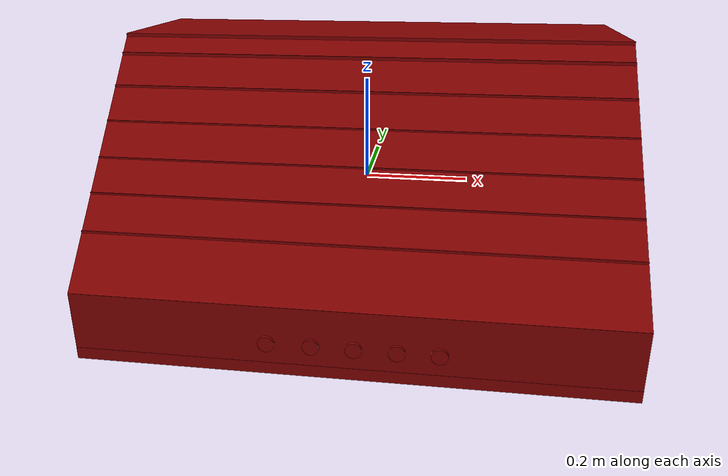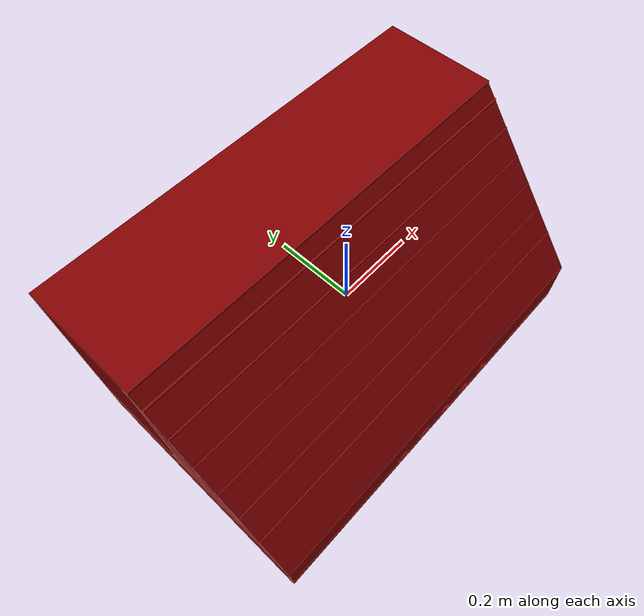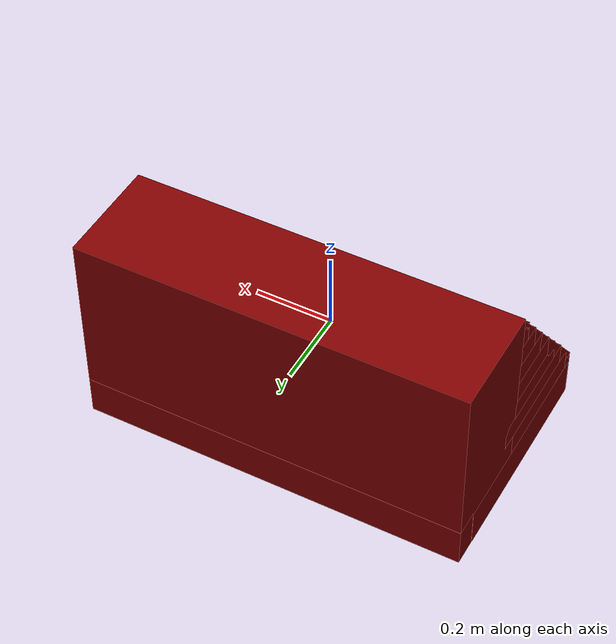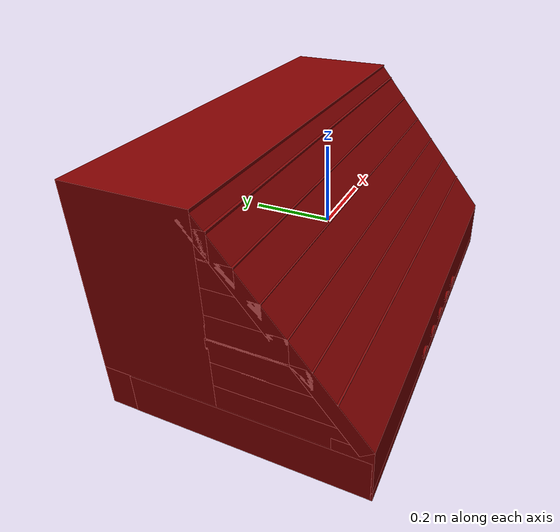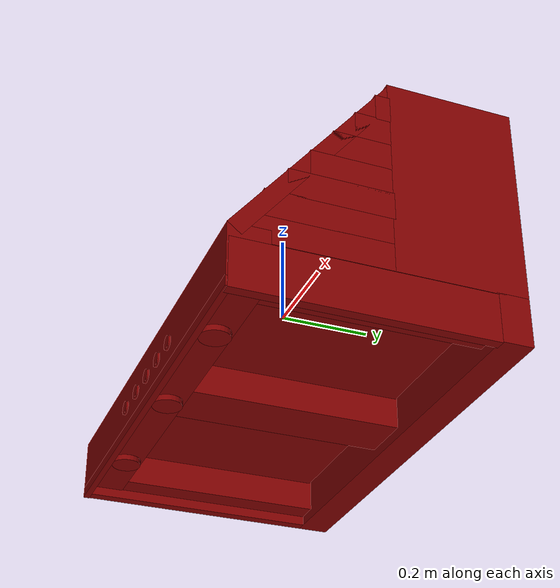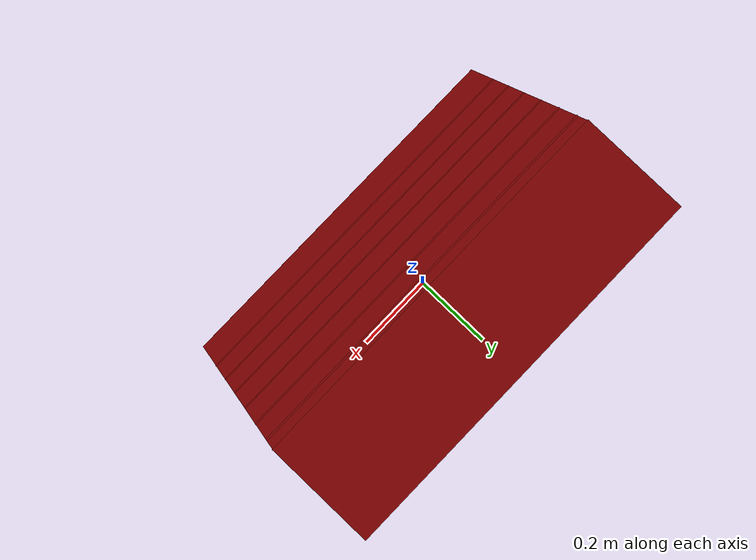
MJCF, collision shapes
<?xml version='1.0' encoding='UTF-8'?>
<mujoco model="model">
  <compiler angle="radian"/>
  <asset>
    <mesh file="visuals/Body001.obj" name="Body001_vis"/>
    <mesh file="visuals/Button001.obj" name="Button001_vis"/>
    <mesh file="visuals/Button002.obj" name="Button002_vis"/>
    <mesh file="visuals/Button003.obj" name="Button003_vis"/>
    <mesh file="visuals/Button004.obj" name="Button004_vis"/>
    <mesh file="visuals/Button005.obj" name="Button005_vis"/>
    <texture file="visuals/T_BC001.png" name="Body001_material" type="2d"/>
    <material name="Body001_material" rgba="1 1 1 1.0" texture="Body001_material" shininess="-1615.1451416015625" specular="0.7"/>
    <texture file="visuals/T_BC001.png" name="Button001_material" type="2d"/>
    <material name="Button001_material" rgba="1 1 1 1.0" texture="Button001_material" shininess="-1615.1451416015625" specular="0.3103448502657381"/>
    <texture file="visuals/T_BC001.png" name="Button002_material" type="2d"/>
    <material name="Button002_material" rgba="1 1 1 1.0" texture="Button002_material" shininess="-1615.1451416015625" specular="0.3103448502657381"/>
    <texture file="visuals/T_BC001.png" name="Button003_material" type="2d"/>
    <material name="Button003_material" rgba="1 1 1 1.0" texture="Button003_material" shininess="-1615.1451416015625" specular="0.3103448502657381"/>
    <texture file="visuals/T_BC001.png" name="Button004_material" type="2d"/>
    <material name="Button004_material" rgba="1 1 1 1.0" texture="Button004_material" shininess="-1615.1451416015625" specular="0.3103448502657381"/>
    <texture file="visuals/T_BC001.png" name="Button005_material" type="2d"/>
    <material name="Button005_material" rgba="1 1 1 1.0" texture="Button005_material" shininess="-1615.1451416015625" specular="0.3103448502657381"/>
  </asset>
  <default>
    <default class="visual">
      <geom conaffinity="0" contype="0" group="1" type="mesh"/>
    </default>
    <default class="collision">
      <geom group="0" rgba="0.5 0 0 0.5"/>
    </default>
    <default class="spawn">
      <geom group="0" rgba="1 1 1 0.5" contype="0" conaffinity="0"/>
      <site group="0" rgba="1 1 1 0.5"/>
    </default>
    <default class="region">
      <geom group="1" conaffinity="0" contype="0" rgba="0 1 0 0"/>
    </default>
  </default>
  <worldbody>
    <body>
      <body name="object">
        <geom mesh="Body001_vis" type="mesh" solimp="0.998 0.998 0.001" solref="0.001 1" density="100" friction="0.95 0.3 0.1" class="visual" material="Body001_material"/>
        <geom class="collision" type="box" pos="-0.000000 0.169169 0.052685" size="0.5031148195266724 0.14136171340942383 0.22405751049518585" quat="1.0 0.0 0.0 0.0"/>
        <geom class="collision" type="box" pos="-0.000000 -0.122727 0.054321" size="0.5031148195266724 0.018117135390639305 0.266616553068161" quat="0.9430525302886963 -0.3326438069343567 -7.400192679193351e-17 -4.955875248644164e-20"/>
        <geom class="collision" type="box" pos="-0.000000 -0.120024 -0.141008" size="0.5031148195266724 0.15663526952266693 0.030364563688635826" quat="1.0 0.0 0.0 0.0"/>
        <geom class="collision" type="box" pos="-0.000000 -0.077251 -0.081126" size="0.5031148195266724 0.15663526952266693 0.030364563688635826" quat="1.0 0.0 0.0 0.0"/>
        <geom class="collision" type="box" pos="-0.000000 -0.076622 -0.022873" size="0.5031148195266724 0.10973050445318222 0.030364563688635826" quat="1.0 0.0 0.0 0.0"/>
        <geom class="collision" type="box" pos="0.000000 -0.055490 0.033342" size="0.5031148195266724 0.08540207892656326 0.030364563688635826" quat="1.0 0.0 0.0 0.0"/>
        <geom class="collision" type="box" pos="0.000000 -0.030999 0.093468" size="0.5031148195266724 0.06149798259139061 0.030364563688635826" quat="1.0 0.0 0.0 0.0"/>
        <geom class="collision" type="box" pos="0.000000 -0.006979 0.153724" size="0.5031148195266724 0.03799305856227875 0.030364563688635826" quat="1.0 0.0 0.0 0.0"/>
        <geom class="collision" type="box" pos="0.000000 0.016753 0.211716" size="0.5031148195266724 0.016180111095309258 0.030364563688635826" quat="1.0 0.0 0.0 0.0"/>
        <geom class="collision" type="box" pos="-0.000000 0.275568 -0.222590" size="0.5031148195266724 0.034963008016347885 0.05370902642607689" quat="1.0 0.0 0.0 0.0"/>
        <geom class="collision" type="box" pos="-0.000000 -0.028239 -0.213599" size="0.059800684452056885 0.2723213732242584 0.040973205119371414" quat="1.0 0.0 0.0 0.0"/>
        <geom class="collision" type="box" pos="-0.491141 -0.028239 -0.224362" size="0.012497935444116592 0.2723214328289032 0.05173563212156296" quat="1.0 0.0 0.0 0.0"/>
        <geom class="collision" type="box" pos="0.492404 -0.028239 -0.225589" size="0.011018079705536366 0.2723214626312256 0.052963223308324814" quat="1.0 0.0 0.0 0.0"/>
        <geom class="collision" type="box" pos="-0.000000 -0.261698 -0.199101" size="0.5031148195266724 0.04257308691740036 0.05696665495634079" quat="1.0 0.0 0.0 0.0"/>
        <geom class="collision" type="box" pos="-0.000000 -0.297733 -0.265655" size="0.5031148195266724 0.006861616391688585 0.011589289642870426" quat="1.0 0.0 0.0 0.0"/>
        <geom class="collision" type="box" pos="-0.245198 0.009114 -0.177724" size="0.18749186396598816 0.22904665768146515 0.008937964215874672" quat="1.0 0.0 0.0 0.0"/>
        <geom class="collision" type="box" pos="0.248248 0.009114 -0.177724" size="0.18749186396598816 0.22904665768146515 0.008937967009842396" quat="1.0 0.0 0.0 0.0"/>
        <geom class="collision" type="cylinder" pos="-0.310267 -0.256152 -0.259484" size="0.0319037064909935 0.008677883073687553" quat="1.0 0.0 0.0 0.0"/>
        <geom class="collision" type="cylinder" pos="0.002586 -0.256152 -0.259484" size="0.0319037064909935 0.008677883073687553" quat="1.0 0.0 0.0 0.0"/>
        <geom class="collision" type="cylinder" pos="0.305254 -0.256152 -0.259484" size="0.0319037064909935 0.008677883073687553" quat="1.0 0.0 0.0 0.0"/>
        <geom class="collision" type="box" pos="0.456571 0.010770 -0.213599" size="0.02761506475508213 0.2309870421886444 0.04097319766879082" quat="1.0 0.0 0.0 0.0"/>
        <geom class="collision" type="box" pos="-0.453150 0.010770 -0.213599" size="0.02576306276023388 0.230987086892128 0.04097319766879082" quat="1.0 0.0 0.0 0.0"/>
        <body name="Button001">
          <joint axis="0.0 1.0 0.0" pos="-0.140570 -0.306417 -0.213872" limited="true" name="Button001_joint" range="0.0 0.004" type="slide" damping="1" frictionloss="1" armature=".01" stiffness="0.05"/>
          <geom mesh="Button001_vis" type="mesh" solimp="0.998 0.998 0.001" solref="0.001 1" density="100" friction="0.95 0.3 0.1" class="visual" material="Button001_material"/>
          <geom class="collision" type="cylinder" pos="-0.140560 -0.307832 -0.213944" size="0.01494545303285122 0.002617895370349288" quat="0.7071067094802856 0.7071068286895752 0.0 0.0"/>
        </body>
        <body name="Button002">
          <joint axis="0.0 1.0 0.0" pos="-0.060564 -0.306417 -0.213872" limited="true" name="Button002_joint" range="0.0 0.004" type="slide" damping="1" frictionloss="1" armature=".01" stiffness="0.05"/>
          <geom mesh="Button002_vis" type="mesh" solimp="0.998 0.998 0.001" solref="0.001 1" density="100" friction="0.95 0.3 0.1" class="visual" material="Button002_material"/>
          <geom class="collision" type="cylinder" pos="-0.060605 -0.307832 -0.213944" size="0.01494545303285122 0.002617895370349288" quat="0.7071067094802856 0.7071068286895752 0.0 0.0"/>
        </body>
        <body name="Button003">
          <joint axis="0.0 1.0 0.0" pos="0.014618 -0.306417 -0.213872" limited="true" name="Button003_joint" range="0.0 0.004" type="slide" damping="1" frictionloss="1" armature=".01" stiffness="0.05"/>
          <geom mesh="Button003_vis" type="mesh" solimp="0.998 0.998 0.001" solref="0.001 1" density="100" friction="0.95 0.3 0.1" class="visual" material="Button003_material"/>
          <geom class="collision" type="cylinder" pos="0.015029 -0.307832 -0.213944" size="0.01494545303285122 0.002617895370349288" quat="0.7071067094802856 0.7071068286895752 0.0 0.0"/>
        </body>
        <body name="Button004">
          <joint axis="0.0 1.0 0.0" pos="0.090061 -0.306417 -0.213872" limited="true" name="Button004_joint" range="0.0 0.004" type="slide" damping="1" frictionloss="1" armature=".01" stiffness="0.05"/>
          <geom mesh="Button004_vis" type="mesh" solimp="0.998 0.998 0.001" solref="0.001 1" density="100" friction="0.95 0.3 0.1" class="visual" material="Button004_material"/>
          <geom class="collision" type="cylinder" pos="0.090269 -0.307832 -0.213944" size="0.01494545303285122 0.002617895370349288" quat="0.7071067094802856 0.7071068286895752 0.0 0.0"/>
        </body>
        <body name="Button005">
          <joint axis="0.0 1.0 0.0" pos="0.163793 -0.306417 -0.213872" limited="true" name="Button005_joint" range="0.0 0.004" type="slide" damping="1" frictionloss="1" armature=".01" stiffness="0.05"/>
          <geom mesh="Button005_vis" type="mesh" solimp="0.998 0.998 0.001" solref="0.001 1" density="100" friction="0.95 0.3 0.1" class="visual" material="Button005_material"/>
          <geom class="collision" type="cylinder" pos="0.163938 -0.307832 -0.213944" size="0.01494545303285122 0.002617895370349288" quat="0.7071067094802856 0.7071068286895752 0.0 0.0"/>
        </body>
        <geom class="region" name="reg_main" type="box" pos="0.0 0.001988500000000004 0.0" size="0.499026 0.3078335 0.276029"/>
      </body>
    </body>
  </worldbody>
  <actuator>
    <motor name="Button001_joint_actuator" joint="Button001_joint" gear="2"/>
    <motor name="Button002_joint_actuator" joint="Button002_joint" gear="2"/>
    <motor name="Button003_joint_actuator" joint="Button003_joint" gear="2"/>
    <motor name="Button004_joint_actuator" joint="Button004_joint" gear="2"/>
    <motor name="Button005_joint_actuator" joint="Button005_joint" gear="2"/>
  </actuator>
</mujoco>
